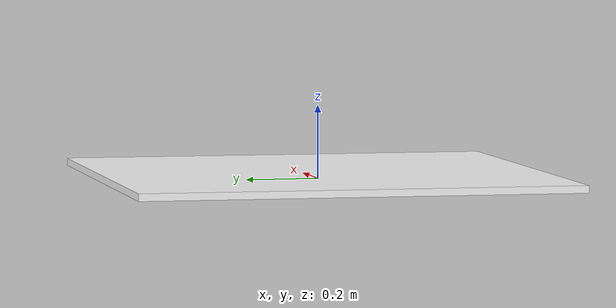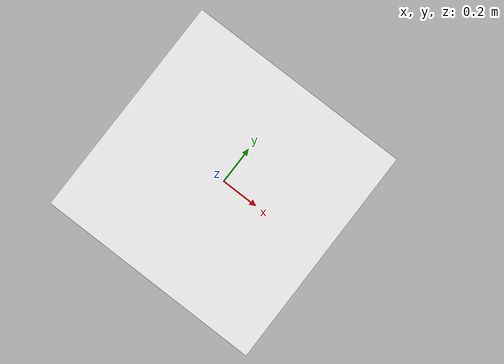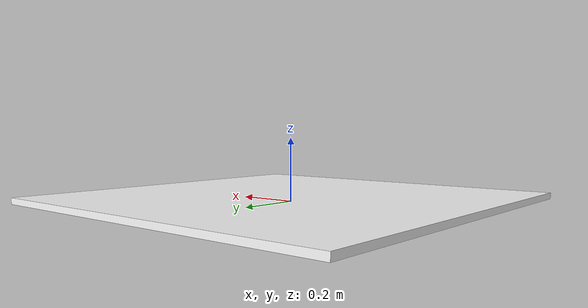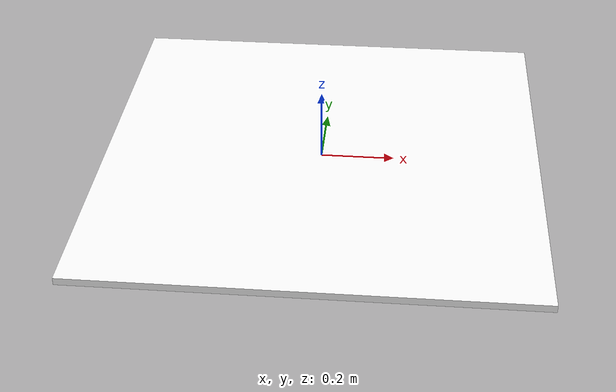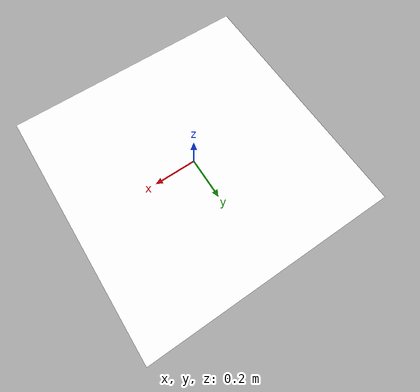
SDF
<?xml version="1.0" ?>
<sdf version="1.9">
  <model name="qr_marker_3">
    <static>true</static>

    <!-- QR LEVHA: 1.2x1.2m yatay, zeminde, gerçek QR texture -->
    <link name="panel">
      <visual name="qr_visual">
        <pose>0 0 0.01 0 0 0</pose>
        <geometry>
          <box><size>1.2 1.2 0.02</size></box>
        </geometry>
        <material>
          <ambient>1 1 1 1</ambient>
          <diffuse>1 1 1 1</diffuse>
          <specular>0.0 0.0 0.0 1</specular>
          <pbr>
            <metal>
              <albedo_map>model://qr_marker_3/materials/textures/qr_3.png</albedo_map>
              <metalness>0.0</metalness>
              <roughness>1.0</roughness>
            </metal>
          </pbr>
        </material>
        <cast_shadows>false</cast_shadows>
      </visual>
      <collision name="c">
        <pose>0 0 0.01 0 0 0</pose>
        <geometry><box><size>1.2 1.2 0.02</size></box></geometry>
      </collision>
    </link>

  </model>
</sdf>
